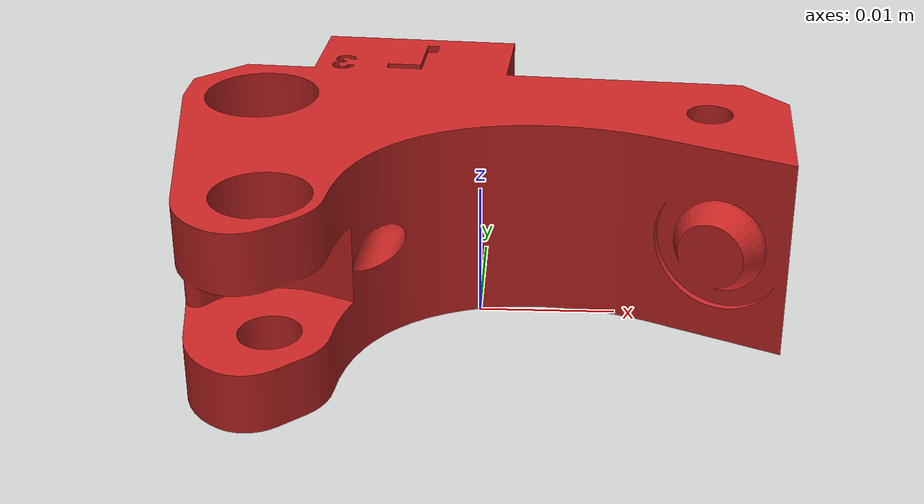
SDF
<?xml version="1.0" ?>
<sdf version="1.5">
  <model name="part_1">
    <static>false</static>
    <link name="part_1_link">
      <self_collide>true</self_collide>

      <collision name="collision">
        <geometry>
          <mesh>
            <uri>model://mahler_obj/part_1/meshes/part_1.dae</uri>
            <scale>0.6 0.6 0.6</scale>
          </mesh>
        </geometry>
      </collision>

      <visual name="visual">
        <geometry>
          <mesh>
            <uri>model://mahler_obj/part_1/meshes/part_1.dae</uri>
            <scale>0.6 0.6 0.6</scale>
          </mesh>
        </geometry>
        <material>
          <script>
            <uri>file://media/materials/scripts/gazebo.material</uri>
            <name>Gazebo/Red</name>
          </script>
        </material>
      </visual>
    </link>

  </model>
</sdf>
